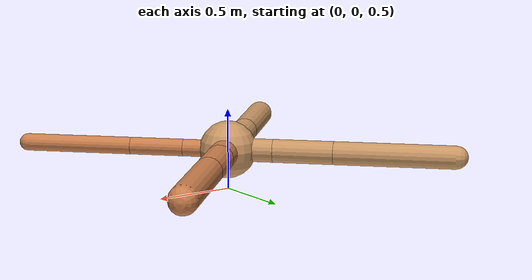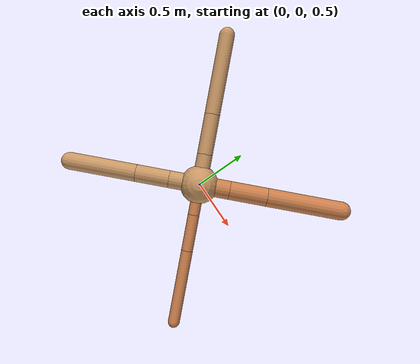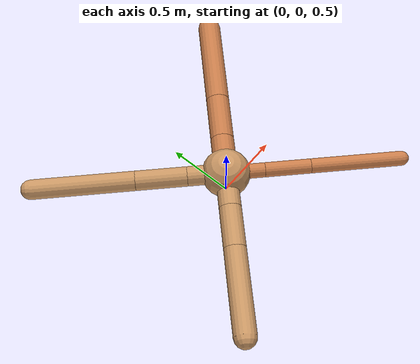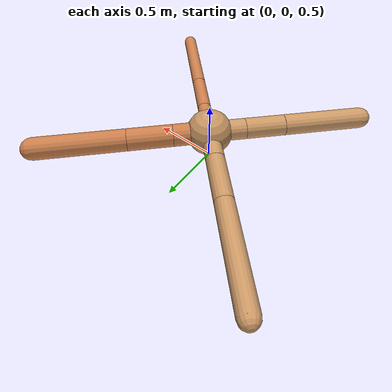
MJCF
<?xml version="1.0" ?>
<mujoco model="ant">

	<compiler angle="degree" coordinate="local" inertiafromgeom="true"/>

	<option integrator="RK4" timestep="0.01"/>

	<custom>

		<numeric data="0.0 0.0 0.55 1.0 0.0 0.0 0.0 0.0 1.0 0.0 -1.0 0.0 -1.0 0.0 1.0" name="init_qpos"/>

	</custom>

	<default>

		<joint armature="1" damping="1" limited="true"/>

		<geom conaffinity="0" condim="3" density="5.0" friction="1.5 0.1 0.1" margin="0.01" rgba="0.8 0.6 0.4 1"/>

	</default>

	<worldbody>

		<body name="torso" pos="0 0 0.75">

			<geom name="torso_geom" pos="0 0 0" size="0.1782985516702826" type="sphere"/>

			<!--joint armature="0" damping="0" limited="false" margin="0.01" name="root" pos="0 0 0" type="free"/-->

			<body name="front_left_leg" pos="0 0 0">

				<geom fromto="0 0 0 0.2 0.2 0" name="aux_1_geom" size="0.08691252019646084" type="capsule" rgba=".8 .5 .3 1"/>

				<body name="aux_1" pos="0.2 0.2 0">

					<joint axis="0 0 1" name="hip_1" pos="0.0 0.0 0.0" range="-40 40" type="hinge"/>

					<geom fromto="0 0 0 0.24792218435532548 0.24792218435532548 0" name="left_leg_geom" size="0.08691252019646084" type="capsule" rgba=".8 .5 .3 1"/>

					<body pos="0.24792218435532548 0.24792218435532548 0" name="front_left_foot">

						<joint axis="-1 1 0" name="ankle_1" pos="0.0 0.0 0.0" range="30 100" type="hinge"/>

						<geom fromto="0 0 0 0.49584436871065096 0.49584436871065096 0" name="left_ankle_geom" size="0.08691252019646084" type="capsule" rgba=".8 .5 .3 1"/>

					</body>

				</body>

			</body>

			<body name="front_right_leg" pos="0 0 0">

				<geom fromto="0 0 0 -0.2 0.2 0" name="aux_2_geom" size="0.0721612908829371" type="capsule"/>

				<body name="aux_2" pos="-0.2 0.2 0">

					<joint axis="0 0 1" name="hip_2" pos="0.0 0.0 0.0" range="-40 40" type="hinge"/>

					<geom fromto="0 0 0 -0.2649881122484388 0.2649881122484388 0" name="right_leg_geom" size="0.0721612908829371" type="capsule"/>

					<body pos="-0.2649881122484388 0.2649881122484388 0" name="front_right_foot">

						<joint axis="1 1 0" name="ankle_2" pos="0.0 0.0 0.0" range="-100 -30" type="hinge"/>

						<geom fromto="0 0 0 -0.5299762244968776 0.5299762244968776 0" name="right_ankle_geom" size="0.0721612908829371" type="capsule"/>

					</body>

				</body>

			</body>

			<body name="left_back_leg" pos="0 0 0">

				<geom fromto="0 0 0 -0.2 -0.2 0" name="aux_3_geom" size="0.0814630656501232" type="capsule"/>

				<body name="aux_3" pos="-0.2 -0.2 0">

					<joint axis="0 0 1" name="hip_3" pos="0.0 0.0 0.0" range="-40 40" type="hinge"/>

					<geom fromto="0 0 0 -0.21921985292679846 -0.21921985292679846 0" name="back_leg_geom" size="0.0814630656501232" type="capsule"/>

					<body pos="-0.21921985292679846 -0.21921985292679846 0" name="left_back_foot">

						<joint axis="-1 1 0" name="ankle_3" pos="0.0 0.0 0.0" range="-100 -30" type="hinge"/>

						<geom fromto="0 0 0 -0.43843970585359693 -0.43843970585359693 0" name="third_ankle_geom" size="0.0814630656501232" type="capsule"/>

					</body>

				</body>

			</body>

			<body name="right_back_leg" pos="0 0 0">

				<geom fromto="0 0 0 0.2 -0.2 0" name="aux_4_geom" size="0.053714574343728325" type="capsule" rgba=".8 .5 .3 1"/>

				<body name="aux_4" pos="0.2 -0.2 0">

					<joint axis="0 0 1" name="hip_4" pos="0.0 0.0 0.0" range="-40 40" type="hinge"/>

					<geom fromto="0 0 0 0.23719936602311434 -0.23719936602311434 0" name="rightback_leg_geom" size="0.053714574343728325" type="capsule" rgba=".8 .5 .3 1"/>

					<body pos="0.23719936602311434 -0.23719936602311434 0" name="right_back_foot">

						<joint axis="1 1 0" name="ankle_4" pos="0.0 0.0 0.0" range="30 100" type="hinge"/>

						<geom fromto="0 0 0 0.4743987320462287 -0.4743987320462287 0" name="fourth_ankle_geom" size="0.053714574343728325" type="capsule" rgba=".8 .5 .3 1"/>

					</body>

				</body>

			</body>

		</body>

	</worldbody>

	<actuator>

		<motor ctrllimited="true" ctrlrange="-1.0 1.0" joint="hip_4" gear="150"/>

		<motor ctrllimited="true" ctrlrange="-1.0 1.0" joint="ankle_4" gear="150"/>

		<motor ctrllimited="true" ctrlrange="-1.0 1.0" joint="hip_1" gear="150"/>

		<motor ctrllimited="true" ctrlrange="-1.0 1.0" joint="ankle_1" gear="150"/>

		<motor ctrllimited="true" ctrlrange="-1.0 1.0" joint="hip_2" gear="150"/>

		<motor ctrllimited="true" ctrlrange="-1.0 1.0" joint="ankle_2" gear="150"/>

		<motor ctrllimited="true" ctrlrange="-1.0 1.0" joint="hip_3" gear="150"/>

		<motor ctrllimited="true" ctrlrange="-1.0 1.0" joint="ankle_3" gear="150"/>

	</actuator>

</mujoco>
